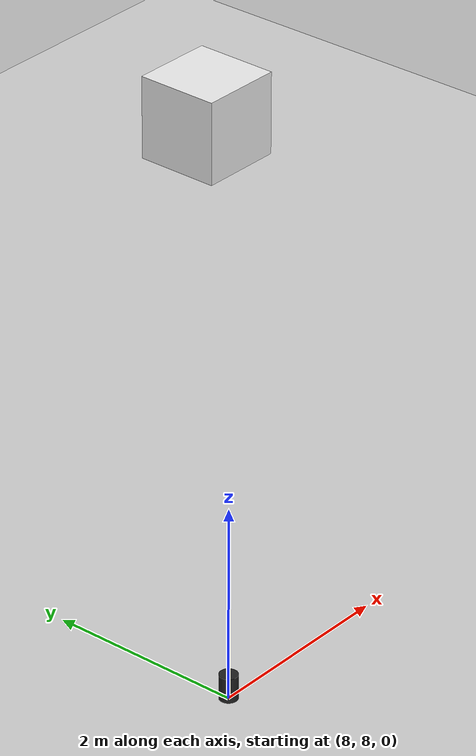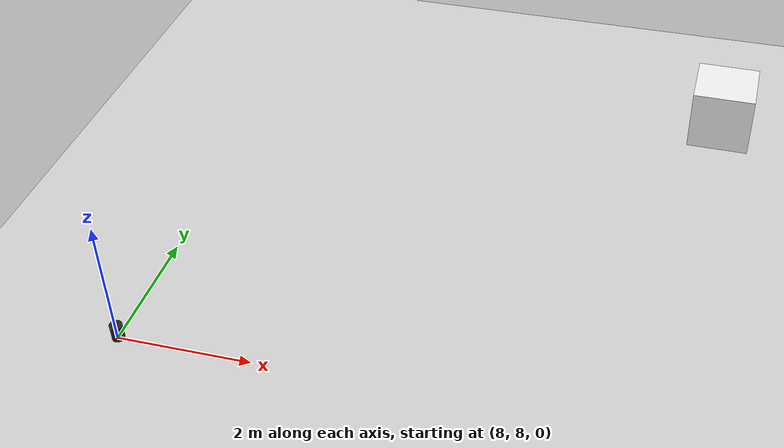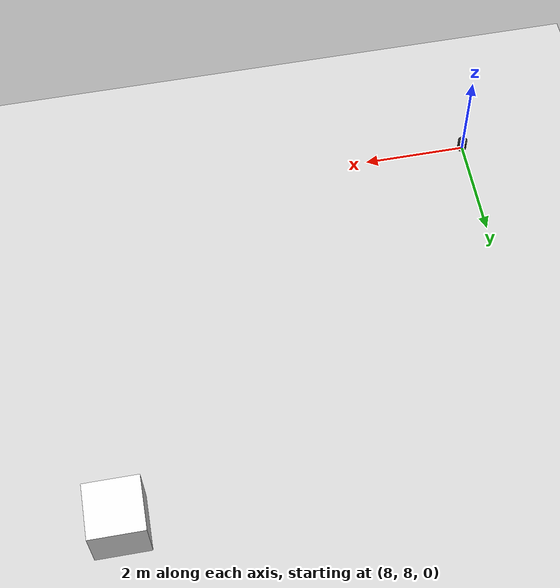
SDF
<sdf version="1.7">
 <world name="default">
  <gravity>0 0 -9.8</gravity>
  <light name="sun" type="directional">
   <pose>0 0 10 0 -0 0</pose>
   <diffuse>0.8 0.8 0.8 1</diffuse>
   <specular>0.2 0.2 0.2 1</specular>
   <attenuation>
    <range>1000</range>
    <constant>0.9</constant>
    <linear>0.01</linear>
    <quadratic>0.001</quadratic>
   </attenuation>
   <direction>-0.5 0.1 -0.9</direction>
   <spot><inner_angle>0</inner_angle><outer_angle>0</outer_angle><falloff>0</falloff></spot>
  </light>
  <model name="ground_plane">
   <static>1</static>
   <link name="link">
    <collision name="collision">
     <geometry><plane><normal>0 0 1</normal><size>100 100</size></plane></geometry>
     <surface>
      <contact><collide_bitmask>65535</collide_bitmask></contact>
      <friction><ode><mu>100</mu><mu2>50</mu2></ode></friction>
     </surface>
    </collision>
    <visual name="visual">
     <cast_shadows>0</cast_shadows>
     <geometry><plane><normal>0 0 1</normal><size>100 100</size></plane></geometry>
     <material>
      <script><uri>file://media/materials/scripts/gazebo.material</uri><name>Gazebo/Grey</name></script>
     </material>
    </visual>
   </link>
  </model>
  <magnetic_field>6e-06 2.3e-05 -4.2e-05</magnetic_field>
  <atmosphere type="adiabatic"/>
  <physics type="ode">
   <max_step_size>0.001</max_step_size>
   <real_time_factor>1</real_time_factor>
   <real_time_update_rate>1000</real_time_update_rate>
  </physics>
  <scene><ambient>0.4 0.4 0.4 1</ambient><background>0.7 0.7 0.7 1</background><shadows>1</shadows></scene>
  <spherical_coordinates>
   <surface_model>EARTH_WGS84</surface_model>
   <latitude_deg>0</latitude_deg>
   <longitude_deg>0</longitude_deg>
   <elevation>0</elevation>
   <heading_deg>0</heading_deg>
  </spherical_coordinates>
  <model name="unit_cylinder">
   <pose>8.00881 8.00566 0.128316 2e-05 -1.9e-05 -0.009884</pose>
   <link name="link_00">
    <inertial>
     <mass>50</mass>
     <inertia><ixx>0.145833</ixx><ixy>0</ixy><ixz>0</ixz><iyy>0.145833</iyy><iyz>0</iyz><izz>0.125</izz></inertia>
    </inertial>
    <collision name="collision">
     <geometry><cylinder><radius>0.0918117</radius><length>0.256628</length></cylinder></geometry>
    </collision>
    <visual name="visual">
     <geometry><cylinder><radius>0.0918117</radius><length>0.256628</length></cylinder></geometry>
     <material>
      <script><name>Gazebo/Black</name><uri>file://media/materials/scripts/gazebo.material</uri></script>
     </material>
    </visual>
   </link>
   <model name="unit_box">
    <pose>7.73315 6.91982 0.5 0 -0 0</pose>
    <link name="link_01">
     <inertial>
      <mass>30</mass>
      <inertia>
       <ixx>0.166667</ixx>
       <ixy>0</ixy>
       <ixz>0</ixz>
       <iyy>0.166667</iyy>
       <iyz>0</iyz>
       <izz>0.166667</izz>
      </inertia>
     </inertial>
     <collision name="collision"><geometry><box><size>0.999999 1 1</size></box></geometry></collision>
     <visual name="visual">
      <geometry><box><size>0.999999 1 1</size></box></geometry>
      <material>
       <script><name>Gazebo/White</name><uri>file://media/materials/scripts/gazebo.material</uri></script>
      </material>
     </visual>
    </link>
   </model>
   <joint name="joint_00" type="fixed">
    <parent>link_00</parent>
    <child>unit_box::link_01</child>
    <axis><xyz>1.0 0.0 0.0</xyz></axis>
   </joint>
  </model>
 </world>
</sdf>
